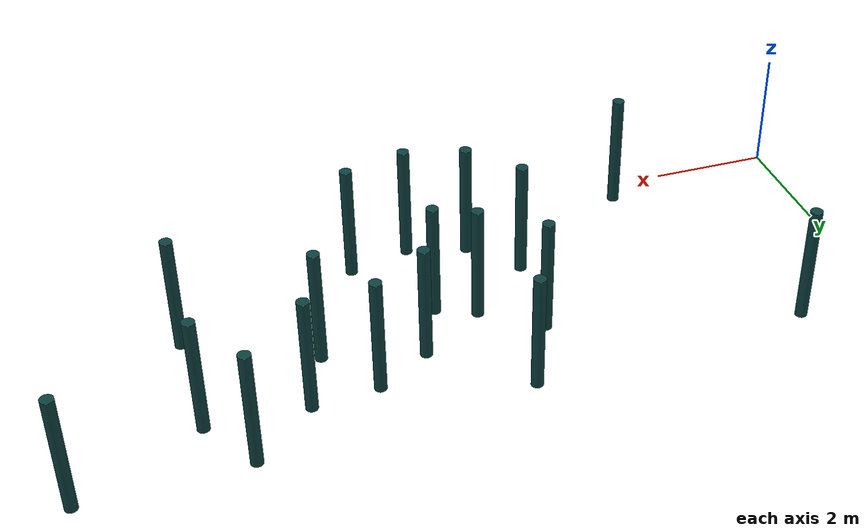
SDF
<sdf version="1.6">
 <world name="default">
  <model name="obstacle_clone">
   <link name="link">
    <inertial>
     <mass>112.569</mass>
     <inertia><ixx>33.2512</ixx><ixy>0</ixy><ixz>0</ixz><iyy>33.2512</iyy><iyz>0</iyz><izz>0.537779</izz></inertia>
    </inertial>
    <visual name="visual">
     <geometry><cylinder><radius>0.1</radius><length>2</length></cylinder></geometry>
     <material>
      <script><name>Gazebo/Grey</name><uri>file://media/materials/scripts/gazebo.material</uri></script>
      <shader type="pixel"><normal_map>__default__</normal_map></shader>
      <ambient>0.05 0.25 0.25 1</ambient>
      <diffuse>0.3 0.3 0.3 1</diffuse>
      <specular>0.01 0.01 0.01 1</specular>
      <emissive>0.1 0.1 0.1 1</emissive>
      <lighting>1</lighting>
     </material>
    </visual>
    <collision name="collision">
     <geometry><cylinder><radius>0.097748</radius><length>1.87509</length></cylinder></geometry>
     <surface>
      <friction>
       <ode><mu>1</mu><mu2>1</mu2><fdir1>0 0 0</fdir1><slip1>0</slip1><slip2>0</slip2></ode>
       <torsional>
        <coefficient>1</coefficient>
        <patch_radius>0</patch_radius>
        <surface_radius>0</surface_radius>
        <use_patch_radius>1</use_patch_radius>
        <ode><slip>0</slip></ode>
       </torsional>
      </friction>
      <bounce><restitution_coefficient>0</restitution_coefficient><threshold>1e+06</threshold></bounce>
      <contact>
       <collide_without_contact>0</collide_without_contact>
       <collide_without_contact_bitmask>1</collide_without_contact_bitmask>
       <collide_bitmask>1</collide_bitmask>
       <ode>
        <soft_cfm>0</soft_cfm>
        <soft_erp>0.2</soft_erp>
        <kp>1e+13</kp>
        <kd>1</kd>
        <max_vel>0.01</max_vel>
        <min_depth>0</min_depth>
       </ode>
       <bullet>
        <split_impulse>1</split_impulse>
        <split_impulse_penetration_threshold>-0.01</split_impulse_penetration_threshold>
        <soft_cfm>0</soft_cfm>
        <soft_erp>0.2</soft_erp>
        <kp>1e+13</kp>
        <kd>1</kd>
       </bullet>
      </contact>
     </surface>
    </collision>
   </link>
   <static>0</static>
   <pose>1.45905 4.37796 0.987544 -3.6e-05 1.1e-05 0.003656</pose>
  </model>
  <model name="obstacle_clone_0">
   <link name="link">
    <inertial>
     <mass>112.569</mass>
     <inertia><ixx>33.2512</ixx><ixy>0</ixy><ixz>0</ixz><iyy>33.2512</iyy><iyz>0</iyz><izz>0.537779</izz></inertia>
    </inertial>
    <visual name="visual">
     <geometry><cylinder><radius>0.1</radius><length>2</length></cylinder></geometry>
     <material>
      <script><name>Gazebo/Grey</name><uri>file://media/materials/scripts/gazebo.material</uri></script>
      <shader type="pixel"><normal_map>__default__</normal_map></shader>
      <ambient>0.05 0.25 0.25 1</ambient>
      <diffuse>0.3 0.3 0.3 1</diffuse>
      <specular>0.01 0.01 0.01 1</specular>
      <emissive>0.1 0.1 0.1 1</emissive>
      <lighting>1</lighting>
     </material>
    </visual>
    <collision name="collision">
     <geometry><cylinder><radius>0.097748</radius><length>1.87509</length></cylinder></geometry>
     <surface>
      <friction>
       <ode><mu>1</mu><mu2>1</mu2><fdir1>0 0 0</fdir1><slip1>0</slip1><slip2>0</slip2></ode>
       <torsional>
        <coefficient>1</coefficient>
        <patch_radius>0</patch_radius>
        <surface_radius>0</surface_radius>
        <use_patch_radius>1</use_patch_radius>
        <ode><slip>0</slip></ode>
       </torsional>
      </friction>
      <bounce><restitution_coefficient>0</restitution_coefficient><threshold>1e+06</threshold></bounce>
      <contact>
       <collide_without_contact>0</collide_without_contact>
       <collide_without_contact_bitmask>1</collide_without_contact_bitmask>
       <collide_bitmask>1</collide_bitmask>
       <ode>
        <soft_cfm>0</soft_cfm>
        <soft_erp>0.2</soft_erp>
        <kp>1e+13</kp>
        <kd>1</kd>
        <max_vel>0.01</max_vel>
        <min_depth>0</min_depth>
       </ode>
       <bullet>
        <split_impulse>1</split_impulse>
        <split_impulse_penetration_threshold>-0.01</split_impulse_penetration_threshold>
        <soft_cfm>0</soft_cfm>
        <soft_erp>0.2</soft_erp>
        <kp>1e+13</kp>
        <kd>1</kd>
       </bullet>
      </contact>
     </surface>
    </collision>
   </link>
   <static>0</static>
   <pose>5.44838 3.37483 0.987542 -6.1e-05 3.1e-05 0.0075</pose>
  </model>
  <model name="obstacle_clone_1">
   <link name="link">
    <inertial>
     <mass>112.569</mass>
     <inertia><ixx>33.2512</ixx><ixy>0</ixy><ixz>0</ixz><iyy>33.2512</iyy><iyz>0</iyz><izz>0.537779</izz></inertia>
    </inertial>
    <visual name="visual">
     <geometry><cylinder><radius>0.1</radius><length>2</length></cylinder></geometry>
     <material>
      <script><name>Gazebo/Grey</name><uri>file://media/materials/scripts/gazebo.material</uri></script>
      <shader type="pixel"><normal_map>__default__</normal_map></shader>
      <ambient>0.05 0.25 0.25 1</ambient>
      <diffuse>0.3 0.3 0.3 1</diffuse>
      <specular>0.01 0.01 0.01 1</specular>
      <emissive>0.1 0.1 0.1 1</emissive>
      <lighting>1</lighting>
     </material>
    </visual>
    <collision name="collision">
     <geometry><cylinder><radius>0.097748</radius><length>1.87509</length></cylinder></geometry>
     <surface>
      <friction>
       <ode><mu>1</mu><mu2>1</mu2><fdir1>0 0 0</fdir1><slip1>0</slip1><slip2>0</slip2></ode>
       <torsional>
        <coefficient>1</coefficient>
        <patch_radius>0</patch_radius>
        <surface_radius>0</surface_radius>
        <use_patch_radius>1</use_patch_radius>
        <ode><slip>0</slip></ode>
       </torsional>
      </friction>
      <bounce><restitution_coefficient>0</restitution_coefficient><threshold>1e+06</threshold></bounce>
      <contact>
       <collide_without_contact>0</collide_without_contact>
       <collide_without_contact_bitmask>1</collide_without_contact_bitmask>
       <collide_bitmask>1</collide_bitmask>
       <ode>
        <soft_cfm>0</soft_cfm>
        <soft_erp>0.2</soft_erp>
        <kp>1e+13</kp>
        <kd>1</kd>
        <max_vel>0.01</max_vel>
        <min_depth>0</min_depth>
       </ode>
       <bullet>
        <split_impulse>1</split_impulse>
        <split_impulse_penetration_threshold>-0.01</split_impulse_penetration_threshold>
        <soft_cfm>0</soft_cfm>
        <soft_erp>0.2</soft_erp>
        <kp>1e+13</kp>
        <kd>1</kd>
       </bullet>
      </contact>
     </surface>
    </collision>
   </link>
   <static>0</static>
   <pose>5.30407 1.78359 0.987542 -6.2e-05 2.9e-05 0.007449</pose>
  </model>
  <model name="obstacle_clone_2">
   <link name="link">
    <inertial>
     <mass>112.569</mass>
     <inertia><ixx>33.2512</ixx><ixy>0</ixy><ixz>0</ixz><iyy>33.2512</iyy><iyz>0</iyz><izz>0.537779</izz></inertia>
    </inertial>
    <visual name="visual">
     <geometry><cylinder><radius>0.1</radius><length>2</length></cylinder></geometry>
     <material>
      <script><name>Gazebo/Grey</name><uri>file://media/materials/scripts/gazebo.material</uri></script>
      <shader type="pixel"><normal_map>__default__</normal_map></shader>
      <ambient>0.05 0.25 0.25 1</ambient>
      <diffuse>0.3 0.3 0.3 1</diffuse>
      <specular>0.01 0.01 0.01 1</specular>
      <emissive>0.1 0.1 0.1 1</emissive>
      <lighting>1</lighting>
     </material>
    </visual>
    <collision name="collision">
     <geometry><cylinder><radius>0.097748</radius><length>1.87509</length></cylinder></geometry>
     <surface>
      <friction>
       <ode><mu>1</mu><mu2>1</mu2><fdir1>0 0 0</fdir1><slip1>0</slip1><slip2>0</slip2></ode>
       <torsional>
        <coefficient>1</coefficient>
        <patch_radius>0</patch_radius>
        <surface_radius>0</surface_radius>
        <use_patch_radius>1</use_patch_radius>
        <ode><slip>0</slip></ode>
       </torsional>
      </friction>
      <bounce><restitution_coefficient>0</restitution_coefficient><threshold>1e+06</threshold></bounce>
      <contact>
       <collide_without_contact>0</collide_without_contact>
       <collide_without_contact_bitmask>1</collide_without_contact_bitmask>
       <collide_bitmask>1</collide_bitmask>
       <ode>
        <soft_cfm>0</soft_cfm>
        <soft_erp>0.2</soft_erp>
        <kp>1e+13</kp>
        <kd>1</kd>
        <max_vel>0.01</max_vel>
        <min_depth>0</min_depth>
       </ode>
       <bullet>
        <split_impulse>1</split_impulse>
        <split_impulse_penetration_threshold>-0.01</split_impulse_penetration_threshold>
        <soft_cfm>0</soft_cfm>
        <soft_erp>0.2</soft_erp>
        <kp>1e+13</kp>
        <kd>1</kd>
       </bullet>
      </contact>
     </surface>
    </collision>
   </link>
   <static>0</static>
   <pose>8.31525 3.95959 0.987542 -6.1e-05 2.5e-05 0.006431</pose>
  </model>
  <model name="obstacle_clone_4">
   <link name="link">
    <inertial>
     <mass>112.569</mass>
     <inertia><ixx>33.2512</ixx><ixy>0</ixy><ixz>0</ixz><iyy>33.2512</iyy><iyz>0</iyz><izz>0.537779</izz></inertia>
    </inertial>
    <visual name="visual">
     <geometry><cylinder><radius>0.1</radius><length>2</length></cylinder></geometry>
     <material>
      <script><name>Gazebo/Grey</name><uri>file://media/materials/scripts/gazebo.material</uri></script>
      <shader type="pixel"><normal_map>__default__</normal_map></shader>
      <ambient>0.05 0.25 0.25 1</ambient>
      <diffuse>0.3 0.3 0.3 1</diffuse>
      <specular>0.01 0.01 0.01 1</specular>
      <emissive>0.1 0.1 0.1 1</emissive>
      <lighting>1</lighting>
     </material>
    </visual>
    <collision name="collision">
     <geometry><cylinder><radius>0.097748</radius><length>1.87509</length></cylinder></geometry>
     <surface>
      <friction>
       <ode><mu>1</mu><mu2>1</mu2><fdir1>0 0 0</fdir1><slip1>0</slip1><slip2>0</slip2></ode>
       <torsional>
        <coefficient>1</coefficient>
        <patch_radius>0</patch_radius>
        <surface_radius>0</surface_radius>
        <use_patch_radius>1</use_patch_radius>
        <ode><slip>0</slip></ode>
       </torsional>
      </friction>
      <bounce><restitution_coefficient>0</restitution_coefficient><threshold>1e+06</threshold></bounce>
      <contact>
       <collide_without_contact>0</collide_without_contact>
       <collide_without_contact_bitmask>1</collide_without_contact_bitmask>
       <collide_bitmask>1</collide_bitmask>
       <ode>
        <soft_cfm>0</soft_cfm>
        <soft_erp>0.2</soft_erp>
        <kp>1e+13</kp>
        <kd>1</kd>
        <max_vel>0.01</max_vel>
        <min_depth>0</min_depth>
       </ode>
       <bullet>
        <split_impulse>1</split_impulse>
        <split_impulse_penetration_threshold>-0.01</split_impulse_penetration_threshold>
        <soft_cfm>0</soft_cfm>
        <soft_erp>0.2</soft_erp>
        <kp>1e+13</kp>
        <kd>1</kd>
       </bullet>
      </contact>
     </surface>
    </collision>
   </link>
   <static>0</static>
   <pose>7.00043 2.43391 0.987551 -5.6e-05 2.6e-05 0.007391</pose>
  </model>
  <model name="obstacle_clone_7">
   <link name="link">
    <inertial>
     <mass>112.569</mass>
     <inertia><ixx>33.2512</ixx><ixy>0</ixy><ixz>0</ixz><iyy>33.2512</iyy><iyz>0</iyz><izz>0.537779</izz></inertia>
    </inertial>
    <visual name="visual">
     <geometry><cylinder><radius>0.1</radius><length>2</length></cylinder></geometry>
     <material>
      <script><name>Gazebo/Grey</name><uri>file://media/materials/scripts/gazebo.material</uri></script>
      <shader type="pixel"><normal_map>__default__</normal_map></shader>
      <ambient>0.05 0.25 0.25 1</ambient>
      <diffuse>0.3 0.3 0.3 1</diffuse>
      <specular>0.01 0.01 0.01 1</specular>
      <emissive>0.1 0.1 0.1 1</emissive>
      <lighting>1</lighting>
     </material>
    </visual>
    <collision name="collision">
     <geometry><cylinder><radius>0.097748</radius><length>1.87509</length></cylinder></geometry>
     <surface>
      <friction>
       <ode><mu>1</mu><mu2>1</mu2><fdir1>0 0 0</fdir1><slip1>0</slip1><slip2>0</slip2></ode>
       <torsional>
        <coefficient>1</coefficient>
        <patch_radius>0</patch_radius>
        <surface_radius>0</surface_radius>
        <use_patch_radius>1</use_patch_radius>
        <ode><slip>0</slip></ode>
       </torsional>
      </friction>
      <bounce><restitution_coefficient>0</restitution_coefficient><threshold>1e+06</threshold></bounce>
      <contact>
       <collide_without_contact>0</collide_without_contact>
       <collide_without_contact_bitmask>1</collide_without_contact_bitmask>
       <collide_bitmask>1</collide_bitmask>
       <ode>
        <soft_cfm>0</soft_cfm>
        <soft_erp>0.2</soft_erp>
        <kp>1e+13</kp>
        <kd>1</kd>
        <max_vel>0.01</max_vel>
        <min_depth>0</min_depth>
       </ode>
       <bullet>
        <split_impulse>1</split_impulse>
        <split_impulse_penetration_threshold>-0.01</split_impulse_penetration_threshold>
        <soft_cfm>0</soft_cfm>
        <soft_erp>0.2</soft_erp>
        <kp>1e+13</kp>
        <kd>1</kd>
       </bullet>
      </contact>
     </surface>
    </collision>
   </link>
   <static>0</static>
   <pose>6.04869 4.62148 0.987551 -6.1e-05 2.8e-05 0.0054</pose>
  </model>
  <model name="obstacle_clone_8">
   <link name="link">
    <inertial>
     <mass>112.569</mass>
     <inertia><ixx>33.2512</ixx><ixy>0</ixy><ixz>0</ixz><iyy>33.2512</iyy><iyz>0</iyz><izz>0.537779</izz></inertia>
    </inertial>
    <visual name="visual">
     <geometry><cylinder><radius>0.1</radius><length>2</length></cylinder></geometry>
     <material>
      <script><name>Gazebo/Grey</name><uri>file://media/materials/scripts/gazebo.material</uri></script>
      <shader type="pixel"><normal_map>__default__</normal_map></shader>
      <ambient>0.05 0.25 0.25 1</ambient>
      <diffuse>0.3 0.3 0.3 1</diffuse>
      <specular>0.01 0.01 0.01 1</specular>
      <emissive>0.1 0.1 0.1 1</emissive>
      <lighting>1</lighting>
     </material>
    </visual>
    <collision name="collision">
     <geometry><cylinder><radius>0.097748</radius><length>1.87509</length></cylinder></geometry>
     <surface>
      <friction>
       <ode><mu>1</mu><mu2>1</mu2><fdir1>0 0 0</fdir1><slip1>0</slip1><slip2>0</slip2></ode>
       <torsional>
        <coefficient>1</coefficient>
        <patch_radius>0</patch_radius>
        <surface_radius>0</surface_radius>
        <use_patch_radius>1</use_patch_radius>
        <ode><slip>0</slip></ode>
       </torsional>
      </friction>
      <bounce><restitution_coefficient>0</restitution_coefficient><threshold>1e+06</threshold></bounce>
      <contact>
       <collide_without_contact>0</collide_without_contact>
       <collide_without_contact_bitmask>1</collide_without_contact_bitmask>
       <collide_bitmask>1</collide_bitmask>
       <ode>
        <soft_cfm>0</soft_cfm>
        <soft_erp>0.2</soft_erp>
        <kp>1e+13</kp>
        <kd>1</kd>
        <max_vel>0.01</max_vel>
        <min_depth>0</min_depth>
       </ode>
       <bullet>
        <split_impulse>1</split_impulse>
        <split_impulse_penetration_threshold>-0.01</split_impulse_penetration_threshold>
        <soft_cfm>0</soft_cfm>
        <soft_erp>0.2</soft_erp>
        <kp>1e+13</kp>
        <kd>1</kd>
       </bullet>
      </contact>
     </surface>
    </collision>
   </link>
   <static>0</static>
   <pose>6.97889 0.734974 0.987541 -5.6e-05 2.5e-05 0.007441</pose>
  </model>
  <model name="obstacle_clone_10">
   <link name="link">
    <inertial>
     <mass>112.569</mass>
     <inertia><ixx>33.2512</ixx><ixy>0</ixy><ixz>0</ixz><iyy>33.2512</iyy><iyz>0</iyz><izz>0.537779</izz></inertia>
    </inertial>
    <visual name="visual">
     <geometry><cylinder><radius>0.1</radius><length>2</length></cylinder></geometry>
     <material>
      <script><name>Gazebo/Grey</name><uri>file://media/materials/scripts/gazebo.material</uri></script>
      <shader type="pixel"><normal_map>__default__</normal_map></shader>
      <ambient>0.05 0.25 0.25 1</ambient>
      <diffuse>0.3 0.3 0.3 1</diffuse>
      <specular>0.01 0.01 0.01 1</specular>
      <emissive>0.1 0.1 0.1 1</emissive>
      <lighting>1</lighting>
     </material>
    </visual>
    <collision name="collision">
     <geometry><cylinder><radius>0.097748</radius><length>1.87509</length></cylinder></geometry>
     <surface>
      <friction>
       <ode><mu>1</mu><mu2>1</mu2><fdir1>0 0 0</fdir1><slip1>0</slip1><slip2>0</slip2></ode>
       <torsional>
        <coefficient>1</coefficient>
        <patch_radius>0</patch_radius>
        <surface_radius>0</surface_radius>
        <use_patch_radius>1</use_patch_radius>
        <ode><slip>0</slip></ode>
       </torsional>
      </friction>
      <bounce><restitution_coefficient>0</restitution_coefficient><threshold>1e+06</threshold></bounce>
      <contact>
       <collide_without_contact>0</collide_without_contact>
       <collide_without_contact_bitmask>1</collide_without_contact_bitmask>
       <collide_bitmask>1</collide_bitmask>
       <ode>
        <soft_cfm>0</soft_cfm>
        <soft_erp>0.2</soft_erp>
        <kp>1e+13</kp>
        <kd>1</kd>
        <max_vel>0.01</max_vel>
        <min_depth>0</min_depth>
       </ode>
       <bullet>
        <split_impulse>1</split_impulse>
        <split_impulse_penetration_threshold>-0.01</split_impulse_penetration_threshold>
        <soft_cfm>0</soft_cfm>
        <soft_erp>0.2</soft_erp>
        <kp>1e+13</kp>
        <kd>1</kd>
       </bullet>
      </contact>
     </surface>
    </collision>
   </link>
   <static>0</static>
   <pose>6.36358 2.7183 0.987551 -6.1e-05 2.7e-05 0.006399</pose>
  </model>
  <model name="obstacle_clone_11">
   <link name="link">
    <inertial>
     <mass>112.569</mass>
     <inertia><ixx>33.2512</ixx><ixy>0</ixy><ixz>0</ixz><iyy>33.2512</iyy><iyz>0</iyz><izz>0.537779</izz></inertia>
    </inertial>
    <visual name="visual">
     <geometry><cylinder><radius>0.1</radius><length>2</length></cylinder></geometry>
     <material>
      <script><name>Gazebo/Grey</name><uri>file://media/materials/scripts/gazebo.material</uri></script>
      <shader type="pixel"><normal_map>__default__</normal_map></shader>
      <ambient>0.05 0.25 0.25 1</ambient>
      <diffuse>0.3 0.3 0.3 1</diffuse>
      <specular>0.01 0.01 0.01 1</specular>
      <emissive>0.1 0.1 0.1 1</emissive>
      <lighting>1</lighting>
     </material>
    </visual>
    <collision name="collision">
     <geometry><cylinder><radius>0.097748</radius><length>1.87509</length></cylinder></geometry>
     <surface>
      <friction>
       <ode><mu>1</mu><mu2>1</mu2><fdir1>0 0 0</fdir1><slip1>0</slip1><slip2>0</slip2></ode>
       <torsional>
        <coefficient>1</coefficient>
        <patch_radius>0</patch_radius>
        <surface_radius>0</surface_radius>
        <use_patch_radius>1</use_patch_radius>
        <ode><slip>0</slip></ode>
       </torsional>
      </friction>
      <bounce><restitution_coefficient>0</restitution_coefficient><threshold>1e+06</threshold></bounce>
      <contact>
       <collide_without_contact>0</collide_without_contact>
       <collide_without_contact_bitmask>1</collide_without_contact_bitmask>
       <collide_bitmask>1</collide_bitmask>
       <ode>
        <soft_cfm>0</soft_cfm>
        <soft_erp>0.2</soft_erp>
        <kp>1e+13</kp>
        <kd>1</kd>
        <max_vel>0.01</max_vel>
        <min_depth>0</min_depth>
       </ode>
       <bullet>
        <split_impulse>1</split_impulse>
        <split_impulse_penetration_threshold>-0.01</split_impulse_penetration_threshold>
        <soft_cfm>0</soft_cfm>
        <soft_erp>0.2</soft_erp>
        <kp>1e+13</kp>
        <kd>1</kd>
       </bullet>
      </contact>
     </surface>
    </collision>
   </link>
   <static>0</static>
   <pose>9.00042 3.00009 0.987542 -5.9e-05 2.9e-05 0.007432</pose>
  </model>
  <model name="obstacle_clone_13">
   <link name="link">
    <inertial>
     <mass>112.569</mass>
     <inertia><ixx>33.2512</ixx><ixy>0</ixy><ixz>0</ixz><iyy>33.2512</iyy><iyz>0</iyz><izz>0.537779</izz></inertia>
    </inertial>
    <visual name="visual">
     <geometry><cylinder><radius>0.1</radius><length>2</length></cylinder></geometry>
     <material>
      <script><name>Gazebo/Grey</name><uri>file://media/materials/scripts/gazebo.material</uri></script>
      <shader type="pixel"><normal_map>__default__</normal_map></shader>
      <ambient>0.05 0.25 0.25 1</ambient>
      <diffuse>0.3 0.3 0.3 1</diffuse>
      <specular>0.01 0.01 0.01 1</specular>
      <emissive>0.1 0.1 0.1 1</emissive>
      <lighting>1</lighting>
     </material>
    </visual>
    <collision name="collision">
     <geometry><cylinder><radius>0.097748</radius><length>1.87509</length></cylinder></geometry>
     <surface>
      <friction>
       <ode><mu>1</mu><mu2>1</mu2><fdir1>0 0 0</fdir1><slip1>0</slip1><slip2>0</slip2></ode>
       <torsional>
        <coefficient>1</coefficient>
        <patch_radius>0</patch_radius>
        <surface_radius>0</surface_radius>
        <use_patch_radius>1</use_patch_radius>
        <ode><slip>0</slip></ode>
       </torsional>
      </friction>
      <bounce><restitution_coefficient>0</restitution_coefficient><threshold>1e+06</threshold></bounce>
      <contact>
       <collide_without_contact>0</collide_without_contact>
       <collide_without_contact_bitmask>1</collide_without_contact_bitmask>
       <collide_bitmask>1</collide_bitmask>
       <ode>
        <soft_cfm>0</soft_cfm>
        <soft_erp>0.2</soft_erp>
        <kp>1e+13</kp>
        <kd>1</kd>
        <max_vel>0.01</max_vel>
        <min_depth>0</min_depth>
       </ode>
       <bullet>
        <split_impulse>1</split_impulse>
        <split_impulse_penetration_threshold>-0.01</split_impulse_penetration_threshold>
        <soft_cfm>0</soft_cfm>
        <soft_erp>0.2</soft_erp>
        <kp>1e+13</kp>
        <kd>1</kd>
       </bullet>
      </contact>
     </surface>
    </collision>
   </link>
   <static>0</static>
   <pose>3.0516 0.364423 0.987543 -3.5e-05 9e-06 0.003654</pose>
  </model>
  <model name="obstacle_clone_14">
   <link name="link">
    <inertial>
     <mass>112.569</mass>
     <inertia><ixx>33.2512</ixx><ixy>0</ixy><ixz>0</ixz><iyy>33.2512</iyy><iyz>0</iyz><izz>0.537779</izz></inertia>
    </inertial>
    <visual name="visual">
     <geometry><cylinder><radius>0.1</radius><length>2</length></cylinder></geometry>
     <material>
      <script><name>Gazebo/Grey</name><uri>file://media/materials/scripts/gazebo.material</uri></script>
      <shader type="pixel"><normal_map>__default__</normal_map></shader>
      <ambient>0.05 0.25 0.25 1</ambient>
      <diffuse>0.3 0.3 0.3 1</diffuse>
      <specular>0.01 0.01 0.01 1</specular>
      <emissive>0.1 0.1 0.1 1</emissive>
      <lighting>1</lighting>
     </material>
    </visual>
    <collision name="collision">
     <geometry><cylinder><radius>0.097748</radius><length>1.87509</length></cylinder></geometry>
     <surface>
      <friction>
       <ode><mu>1</mu><mu2>1</mu2><fdir1>0 0 0</fdir1><slip1>0</slip1><slip2>0</slip2></ode>
       <torsional>
        <coefficient>1</coefficient>
        <patch_radius>0</patch_radius>
        <surface_radius>0</surface_radius>
        <use_patch_radius>1</use_patch_radius>
        <ode><slip>0</slip></ode>
       </torsional>
      </friction>
      <bounce><restitution_coefficient>0</restitution_coefficient><threshold>1e+06</threshold></bounce>
      <contact>
       <collide_without_contact>0</collide_without_contact>
       <collide_without_contact_bitmask>1</collide_without_contact_bitmask>
       <collide_bitmask>1</collide_bitmask>
       <ode>
        <soft_cfm>0</soft_cfm>
        <soft_erp>0.2</soft_erp>
        <kp>1e+13</kp>
        <kd>1</kd>
        <max_vel>0.01</max_vel>
        <min_depth>0</min_depth>
       </ode>
       <bullet>
        <split_impulse>1</split_impulse>
        <split_impulse_penetration_threshold>-0.01</split_impulse_penetration_threshold>
        <soft_cfm>0</soft_cfm>
        <soft_erp>0.2</soft_erp>
        <kp>1e+13</kp>
        <kd>1</kd>
       </bullet>
      </contact>
     </surface>
    </collision>
   </link>
   <static>0</static>
   <pose>7.43366 3.42025 0.987541 -5.7e-05 2.5e-05 0.006897</pose>
  </model>
  <model name="obstacle_clone_15">
   <link name="link">
    <inertial>
     <mass>112.569</mass>
     <inertia><ixx>33.2512</ixx><ixy>0</ixy><ixz>0</ixz><iyy>33.2512</iyy><iyz>0</iyz><izz>0.537779</izz></inertia>
    </inertial>
    <visual name="visual">
     <geometry><cylinder><radius>0.1</radius><length>2</length></cylinder></geometry>
     <material>
      <script><name>Gazebo/Grey</name><uri>file://media/materials/scripts/gazebo.material</uri></script>
      <shader type="pixel"><normal_map>__default__</normal_map></shader>
      <ambient>0.05 0.25 0.25 1</ambient>
      <diffuse>0.3 0.3 0.3 1</diffuse>
      <specular>0.01 0.01 0.01 1</specular>
      <emissive>0.1 0.1 0.1 1</emissive>
      <lighting>1</lighting>
     </material>
    </visual>
    <collision name="collision">
     <geometry><cylinder><radius>0.097748</radius><length>1.87509</length></cylinder></geometry>
     <surface>
      <friction>
       <ode><mu>1</mu><mu2>1</mu2><fdir1>0 0 0</fdir1><slip1>0</slip1><slip2>0</slip2></ode>
       <torsional>
        <coefficient>1</coefficient>
        <patch_radius>0</patch_radius>
        <surface_radius>0</surface_radius>
        <use_patch_radius>1</use_patch_radius>
        <ode><slip>0</slip></ode>
       </torsional>
      </friction>
      <bounce><restitution_coefficient>0</restitution_coefficient><threshold>1e+06</threshold></bounce>
      <contact>
       <collide_without_contact>0</collide_without_contact>
       <collide_without_contact_bitmask>1</collide_without_contact_bitmask>
       <collide_bitmask>1</collide_bitmask>
       <ode>
        <soft_cfm>0</soft_cfm>
        <soft_erp>0.2</soft_erp>
        <kp>1e+13</kp>
        <kd>1</kd>
        <max_vel>0.01</max_vel>
        <min_depth>0</min_depth>
       </ode>
       <bullet>
        <split_impulse>1</split_impulse>
        <split_impulse_penetration_threshold>-0.01</split_impulse_penetration_threshold>
        <soft_cfm>0</soft_cfm>
        <soft_erp>0.2</soft_erp>
        <kp>1e+13</kp>
        <kd>1</kd>
       </bullet>
      </contact>
     </surface>
    </collision>
   </link>
   <static>0</static>
   <pose>9.39753 4.05939 0.987542 -5.7e-05 2.6e-05 0.005004</pose>
  </model>
  <model name="obstacle_clone_21">
   <link name="link">
    <inertial>
     <mass>112.569</mass>
     <inertia><ixx>33.2512</ixx><ixy>0</ixy><ixz>0</ixz><iyy>33.2512</iyy><iyz>0</iyz><izz>0.537779</izz></inertia>
    </inertial>
    <visual name="visual">
     <geometry><cylinder><radius>0.1</radius><length>2</length></cylinder></geometry>
     <material>
      <script><name>Gazebo/Grey</name><uri>file://media/materials/scripts/gazebo.material</uri></script>
      <shader type="pixel"><normal_map>__default__</normal_map></shader>
      <ambient>0.05 0.25 0.25 1</ambient>
      <diffuse>0.3 0.3 0.3 1</diffuse>
      <specular>0.01 0.01 0.01 1</specular>
      <emissive>0.1 0.1 0.1 1</emissive>
      <lighting>1</lighting>
     </material>
    </visual>
    <collision name="collision">
     <geometry><cylinder><radius>0.097748</radius><length>1.87509</length></cylinder></geometry>
     <surface>
      <friction>
       <ode><mu>1</mu><mu2>1</mu2><fdir1>0 0 0</fdir1><slip1>0</slip1><slip2>0</slip2></ode>
       <torsional>
        <coefficient>1</coefficient>
        <patch_radius>0</patch_radius>
        <surface_radius>0</surface_radius>
        <use_patch_radius>1</use_patch_radius>
        <ode><slip>0</slip></ode>
       </torsional>
      </friction>
      <bounce><restitution_coefficient>0</restitution_coefficient><threshold>1e+06</threshold></bounce>
      <contact>
       <collide_without_contact>0</collide_without_contact>
       <collide_without_contact_bitmask>1</collide_without_contact_bitmask>
       <collide_bitmask>1</collide_bitmask>
       <ode>
        <soft_cfm>0</soft_cfm>
        <soft_erp>0.2</soft_erp>
        <kp>1e+13</kp>
        <kd>1</kd>
        <max_vel>0.01</max_vel>
        <min_depth>0</min_depth>
       </ode>
       <bullet>
        <split_impulse>1</split_impulse>
        <split_impulse_penetration_threshold>-0.01</split_impulse_penetration_threshold>
        <soft_cfm>0</soft_cfm>
        <soft_erp>0.2</soft_erp>
        <kp>1e+13</kp>
        <kd>1</kd>
       </bullet>
      </contact>
     </surface>
    </collision>
   </link>
   <static>0</static>
   <pose>10.4021 4.93698 0.987551 -5.9e-05 2.5e-05 0.007082</pose>
  </model>
  <model name="obstacle_clone_23">
   <link name="link">
    <inertial>
     <mass>112.569</mass>
     <inertia><ixx>33.2512</ixx><ixy>0</ixy><ixz>0</ixz><iyy>33.2512</iyy><iyz>0</iyz><izz>0.537779</izz></inertia>
    </inertial>
    <visual name="visual">
     <geometry><cylinder><radius>0.1</radius><length>2</length></cylinder></geometry>
     <material>
      <script><name>Gazebo/Grey</name><uri>file://media/materials/scripts/gazebo.material</uri></script>
      <shader type="pixel"><normal_map>__default__</normal_map></shader>
      <ambient>0.05 0.25 0.25 1</ambient>
      <diffuse>0.3 0.3 0.3 1</diffuse>
      <specular>0.01 0.01 0.01 1</specular>
      <emissive>0.1 0.1 0.1 1</emissive>
      <lighting>1</lighting>
     </material>
    </visual>
    <collision name="collision">
     <geometry><cylinder><radius>0.097748</radius><length>1.87509</length></cylinder></geometry>
     <surface>
      <friction>
       <ode><mu>1</mu><mu2>1</mu2><fdir1>0 0 0</fdir1><slip1>0</slip1><slip2>0</slip2></ode>
       <torsional>
        <coefficient>1</coefficient>
        <patch_radius>0</patch_radius>
        <surface_radius>0</surface_radius>
        <use_patch_radius>1</use_patch_radius>
        <ode><slip>0</slip></ode>
       </torsional>
      </friction>
      <bounce><restitution_coefficient>0</restitution_coefficient><threshold>1e+06</threshold></bounce>
      <contact>
       <collide_without_contact>0</collide_without_contact>
       <collide_without_contact_bitmask>1</collide_without_contact_bitmask>
       <collide_bitmask>1</collide_bitmask>
       <ode>
        <soft_cfm>0</soft_cfm>
        <soft_erp>0.2</soft_erp>
        <kp>1e+13</kp>
        <kd>1</kd>
        <max_vel>0.01</max_vel>
        <min_depth>0</min_depth>
       </ode>
       <bullet>
        <split_impulse>1</split_impulse>
        <split_impulse_penetration_threshold>-0.01</split_impulse_penetration_threshold>
        <soft_cfm>0</soft_cfm>
        <soft_erp>0.2</soft_erp>
        <kp>1e+13</kp>
        <kd>1</kd>
       </bullet>
      </contact>
     </surface>
    </collision>
   </link>
   <static>0</static>
   <pose>11.0004 2.00008 0.987551 -6.3e-05 2.7e-05 0.006967</pose>
  </model>
  <model name="obstacle_clone_24">
   <link name="link">
    <inertial>
     <mass>112.569</mass>
     <inertia><ixx>33.2512</ixx><ixy>0</ixy><ixz>0</ixz><iyy>33.2512</iyy><iyz>0</iyz><izz>0.537779</izz></inertia>
    </inertial>
    <visual name="visual">
     <geometry><cylinder><radius>0.1</radius><length>2</length></cylinder></geometry>
     <material>
      <script><name>Gazebo/Grey</name><uri>file://media/materials/scripts/gazebo.material</uri></script>
      <shader type="pixel"><normal_map>__default__</normal_map></shader>
      <ambient>0.05 0.25 0.25 1</ambient>
      <diffuse>0.3 0.3 0.3 1</diffuse>
      <specular>0.01 0.01 0.01 1</specular>
      <emissive>0.1 0.1 0.1 1</emissive>
      <lighting>1</lighting>
     </material>
    </visual>
    <collision name="collision">
     <geometry><cylinder><radius>0.097748</radius><length>1.87509</length></cylinder></geometry>
     <surface>
      <friction>
       <ode><mu>1</mu><mu2>1</mu2><fdir1>0 0 0</fdir1><slip1>0</slip1><slip2>0</slip2></ode>
       <torsional>
        <coefficient>1</coefficient>
        <patch_radius>0</patch_radius>
        <surface_radius>0</surface_radius>
        <use_patch_radius>1</use_patch_radius>
        <ode><slip>0</slip></ode>
       </torsional>
      </friction>
      <bounce><restitution_coefficient>0</restitution_coefficient><threshold>1e+06</threshold></bounce>
      <contact>
       <collide_without_contact>0</collide_without_contact>
       <collide_without_contact_bitmask>1</collide_without_contact_bitmask>
       <collide_bitmask>1</collide_bitmask>
       <ode>
        <soft_cfm>0</soft_cfm>
        <soft_erp>0.2</soft_erp>
        <kp>1e+13</kp>
        <kd>1</kd>
        <max_vel>0.01</max_vel>
        <min_depth>0</min_depth>
       </ode>
       <bullet>
        <split_impulse>1</split_impulse>
        <split_impulse_penetration_threshold>-0.01</split_impulse_penetration_threshold>
        <soft_cfm>0</soft_cfm>
        <soft_erp>0.2</soft_erp>
        <kp>1e+13</kp>
        <kd>1</kd>
       </bullet>
      </contact>
     </surface>
    </collision>
   </link>
   <static>0</static>
   <pose>8.00038 1.00008 0.98755 -5.2e-05 2.3e-05 0.007069</pose>
  </model>
  <model name="obstacle_clone_25">
   <link name="link">
    <inertial>
     <mass>112.569</mass>
     <inertia><ixx>33.2512</ixx><ixy>0</ixy><ixz>0</ixz><iyy>33.2512</iyy><iyz>0</iyz><izz>0.537779</izz></inertia>
    </inertial>
    <visual name="visual">
     <geometry><cylinder><radius>0.1</radius><length>2</length></cylinder></geometry>
     <material>
      <script><name>Gazebo/Grey</name><uri>file://media/materials/scripts/gazebo.material</uri></script>
      <shader type="pixel"><normal_map>__default__</normal_map></shader>
      <ambient>0.05 0.25 0.25 1</ambient>
      <diffuse>0.3 0.3 0.3 1</diffuse>
      <specular>0.01 0.01 0.01 1</specular>
      <emissive>0.1 0.1 0.1 1</emissive>
      <lighting>1</lighting>
     </material>
    </visual>
    <collision name="collision">
     <geometry><cylinder><radius>0.097748</radius><length>1.87509</length></cylinder></geometry>
     <surface>
      <friction>
       <ode><mu>1</mu><mu2>1</mu2><fdir1>0 0 0</fdir1><slip1>0</slip1><slip2>0</slip2></ode>
       <torsional>
        <coefficient>1</coefficient>
        <patch_radius>0</patch_radius>
        <surface_radius>0</surface_radius>
        <use_patch_radius>1</use_patch_radius>
        <ode><slip>0</slip></ode>
       </torsional>
      </friction>
      <bounce><restitution_coefficient>0</restitution_coefficient><threshold>1e+06</threshold></bounce>
      <contact>
       <collide_without_contact>0</collide_without_contact>
       <collide_without_contact_bitmask>1</collide_without_contact_bitmask>
       <collide_bitmask>1</collide_bitmask>
       <ode>
        <soft_cfm>0</soft_cfm>
        <soft_erp>0.2</soft_erp>
        <kp>1e+13</kp>
        <kd>1</kd>
        <max_vel>0.01</max_vel>
        <min_depth>0</min_depth>
       </ode>
       <bullet>
        <split_impulse>1</split_impulse>
        <split_impulse_penetration_threshold>-0.01</split_impulse_penetration_threshold>
        <soft_cfm>0</soft_cfm>
        <soft_erp>0.2</soft_erp>
        <kp>1e+13</kp>
        <kd>1</kd>
       </bullet>
      </contact>
     </surface>
    </collision>
   </link>
   <static>0</static>
   <pose>6.00037 1.00007 0.987542 -6e-05 2.6e-05 0.006831</pose>
  </model>
  <model name="obstacle_clone_26">
   <link name="link">
    <inertial>
     <mass>112.569</mass>
     <inertia><ixx>33.2512</ixx><ixy>0</ixy><ixz>0</ixz><iyy>33.2512</iyy><iyz>0</iyz><izz>0.537779</izz></inertia>
    </inertial>
    <visual name="visual">
     <geometry><cylinder><radius>0.1</radius><length>2</length></cylinder></geometry>
     <material>
      <script><name>Gazebo/Grey</name><uri>file://media/materials/scripts/gazebo.material</uri></script>
      <shader type="pixel"><normal_map>__default__</normal_map></shader>
      <ambient>0.05 0.25 0.25 1</ambient>
      <diffuse>0.3 0.3 0.3 1</diffuse>
      <specular>0.01 0.01 0.01 1</specular>
      <emissive>0.1 0.1 0.1 1</emissive>
      <lighting>1</lighting>
     </material>
    </visual>
    <collision name="collision">
     <geometry><cylinder><radius>0.097748</radius><length>1.87509</length></cylinder></geometry>
     <surface>
      <friction>
       <ode><mu>1</mu><mu2>1</mu2><fdir1>0 0 0</fdir1><slip1>0</slip1><slip2>0</slip2></ode>
       <torsional>
        <coefficient>1</coefficient>
        <patch_radius>0</patch_radius>
        <surface_radius>0</surface_radius>
        <use_patch_radius>1</use_patch_radius>
        <ode><slip>0</slip></ode>
       </torsional>
      </friction>
      <bounce><restitution_coefficient>0</restitution_coefficient><threshold>1e+06</threshold></bounce>
      <contact>
       <collide_without_contact>0</collide_without_contact>
       <collide_without_contact_bitmask>1</collide_without_contact_bitmask>
       <collide_bitmask>1</collide_bitmask>
       <ode>
        <soft_cfm>0</soft_cfm>
        <soft_erp>0.2</soft_erp>
        <kp>1e+13</kp>
        <kd>1</kd>
        <max_vel>0.01</max_vel>
        <min_depth>0</min_depth>
       </ode>
       <bullet>
        <split_impulse>1</split_impulse>
        <split_impulse_penetration_threshold>-0.01</split_impulse_penetration_threshold>
        <soft_cfm>0</soft_cfm>
        <soft_erp>0.2</soft_erp>
        <kp>1e+13</kp>
        <kd>1</kd>
       </bullet>
      </contact>
     </surface>
    </collision>
   </link>
   <static>0</static>
   <pose>13.0004 5.00008 0.987541 -5.5e-05 2.4e-05 0.006829</pose>
  </model>
  <model name="obstacle_clone_29">
   <link name="link">
    <inertial>
     <mass>112.569</mass>
     <inertia><ixx>33.2512</ixx><ixy>0</ixy><ixz>0</ixz><iyy>33.2512</iyy><iyz>0</iyz><izz>0.537779</izz></inertia>
    </inertial>
    <visual name="visual">
     <geometry><cylinder><radius>0.1</radius><length>2</length></cylinder></geometry>
     <material>
      <script><name>Gazebo/Grey</name><uri>file://media/materials/scripts/gazebo.material</uri></script>
      <shader type="pixel"><normal_map>__default__</normal_map></shader>
      <ambient>0.05 0.25 0.25 1</ambient>
      <diffuse>0.3 0.3 0.3 1</diffuse>
      <specular>0.01 0.01 0.01 1</specular>
      <emissive>0.1 0.1 0.1 1</emissive>
      <lighting>1</lighting>
     </material>
    </visual>
    <collision name="collision">
     <geometry><cylinder><radius>0.097748</radius><length>1.87509</length></cylinder></geometry>
     <surface>
      <friction>
       <ode><mu>1</mu><mu2>1</mu2><fdir1>0 0 0</fdir1><slip1>0</slip1><slip2>0</slip2></ode>
       <torsional>
        <coefficient>1</coefficient>
        <patch_radius>0</patch_radius>
        <surface_radius>0</surface_radius>
        <use_patch_radius>1</use_patch_radius>
        <ode><slip>0</slip></ode>
       </torsional>
      </friction>
      <bounce><restitution_coefficient>0</restitution_coefficient><threshold>1e+06</threshold></bounce>
      <contact>
       <collide_without_contact>0</collide_without_contact>
       <collide_without_contact_bitmask>1</collide_without_contact_bitmask>
       <collide_bitmask>1</collide_bitmask>
       <ode>
        <soft_cfm>0</soft_cfm>
        <soft_erp>0.2</soft_erp>
        <kp>1e+13</kp>
        <kd>1</kd>
        <max_vel>0.01</max_vel>
        <min_depth>0</min_depth>
       </ode>
       <bullet>
        <split_impulse>1</split_impulse>
        <split_impulse_penetration_threshold>-0.01</split_impulse_penetration_threshold>
        <soft_cfm>0</soft_cfm>
        <soft_erp>0.2</soft_erp>
        <kp>1e+13</kp>
        <kd>1</kd>
       </bullet>
      </contact>
     </surface>
    </collision>
   </link>
   <static>0</static>
   <pose>11.0004 4.00006 0.987541 -5.3e-05 2.1e-05 0.006664</pose>
  </model>
 </world>
</sdf>
